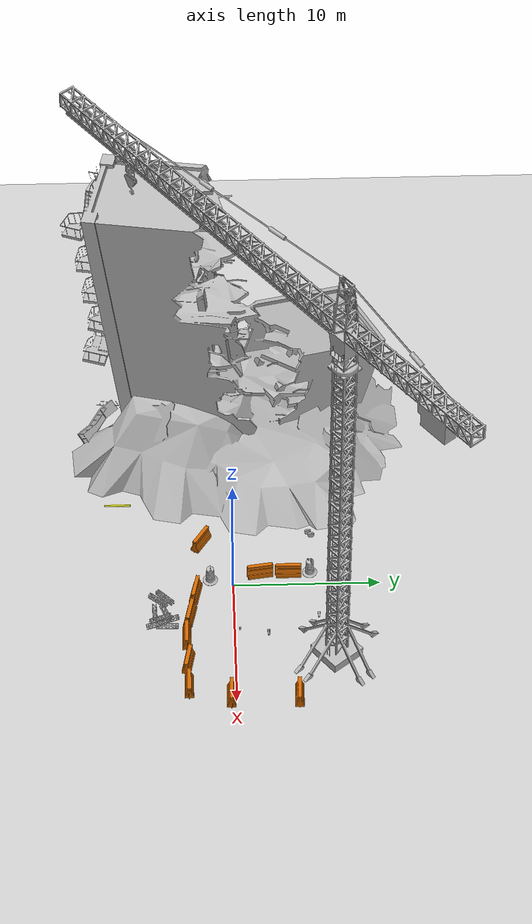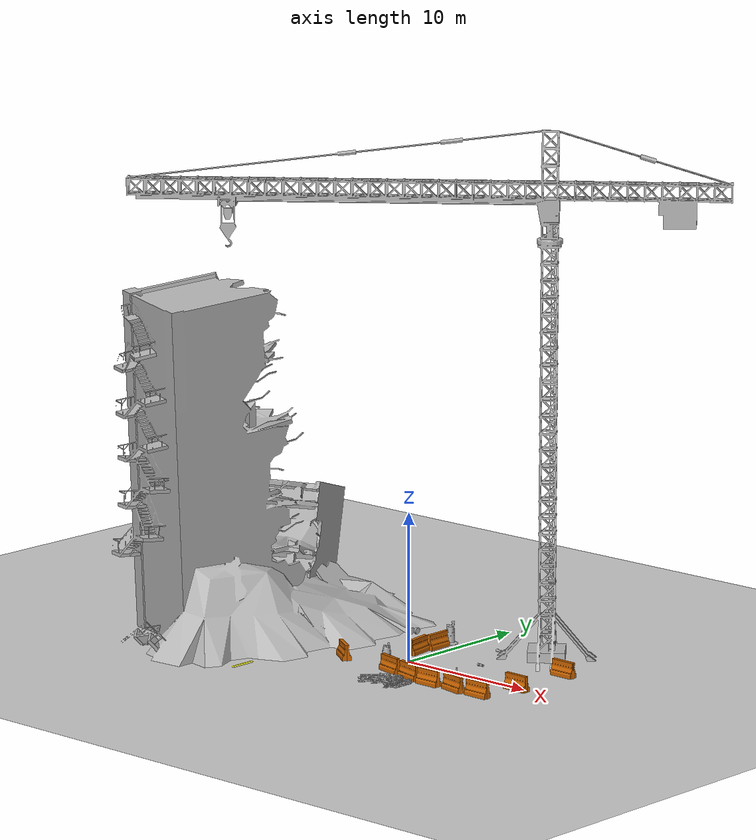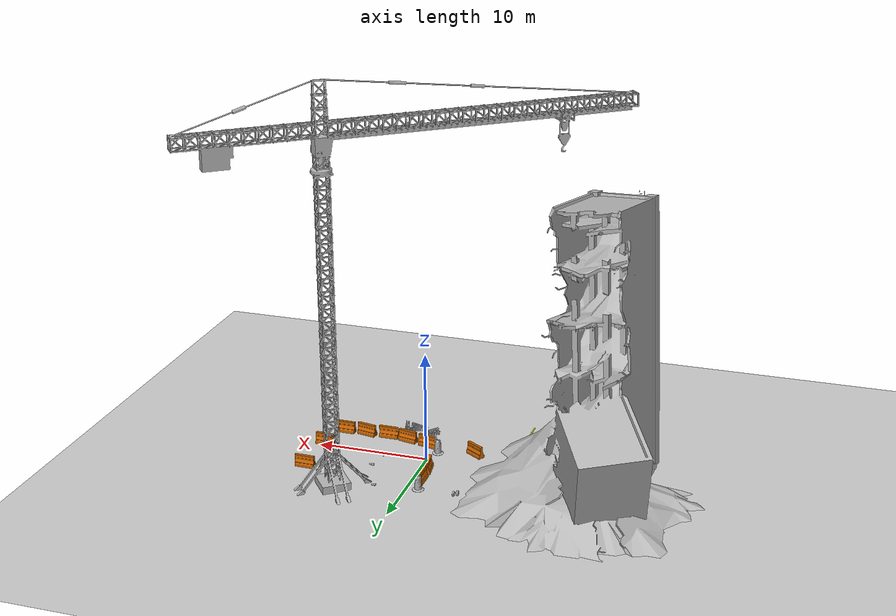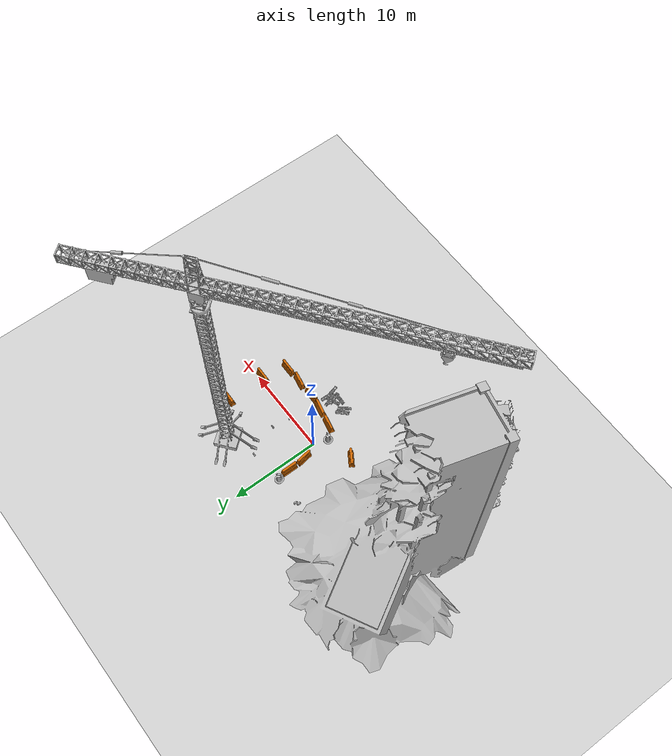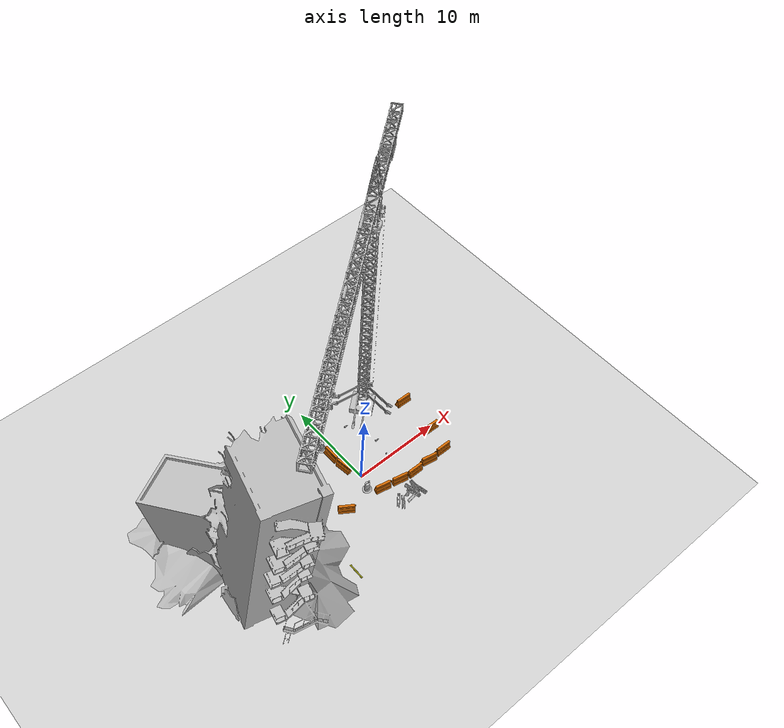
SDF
<sdf version="1.6">
 <world name="default">
  <light name="sun" type="directional">
   <pose>0 0 10 0 -0 0</pose>
   <diffuse>0.8 0.8 0.8 1</diffuse>
   <specular>0.1 0.1 0.1 1</specular>
   <attenuation>
    <range>1000</range>
    <constant>0.9</constant>
    <linear>0.01</linear>
    <quadratic>0.001</quadratic>
   </attenuation>
   <direction>-0.5 0.5 -1</direction>
  </light>
  <model name="ground_plane">
   <static>1</static>
   <link name="link">
    <collision name="collision">
     <geometry><plane><normal>0 0 1</normal><size>100 100</size></plane></geometry>
     <surface><friction><ode><mu>100</mu><mu2>50</mu2></ode></friction></surface>
    </collision>
    <visual name="visual">
     <cast_shadows>0</cast_shadows>
     <geometry><plane><normal>0 0 1</normal><size>100 100</size></plane></geometry>
     <material>
      <script><uri>file://media/materials/scripts/gazebo.material</uri><name>Gazebo/Grey</name></script>
     </material>
    </visual>
   </link>
  </model>
  <gravity>0 0 -9.8</gravity>
  <magnetic_field>6e-06 2.3e-05 -4.2e-05</magnetic_field>
  <atmosphere type="adiabatic"/>
  <physics name="default_physics" default="0" type="ode">
   <max_step_size>0.001</max_step_size>
   <real_time_factor>1</real_time_factor>
   <real_time_update_rate>1000</real_time_update_rate>
  </physics>
  <scene><ambient>0.4 0.4 0.4 1</ambient><background>0.7 0.7 0.7 1</background><shadows>1</shadows></scene>
  <spherical_coordinates>
   <surface_model>EARTH_WGS84</surface_model>
   <latitude_deg>0</latitude_deg>
   <longitude_deg>0</longitude_deg>
   <elevation>0</elevation>
   <heading_deg>0</heading_deg>
  </spherical_coordinates>
  <model name="collapsed_industrial">
   <static>1</static>
   <link name="link">
    <collision name="collision">
     <geometry><mesh><uri>model://collapsed_industrial/meshes/collapsed_industrial.dae</uri></mesh></geometry>
    </collision>
    <visual name="visual">
     <geometry><mesh><uri>model://collapsed_industrial/meshes/collapsed_industrial.dae</uri></mesh></geometry>
    </visual>
   </link>
   <pose>-14.0067 -0.103419 0 0 -0 1.33365</pose>
  </model>
  <model name="tower_crane">
   <static>1</static>
   <link name="link">
    <collision name="collision">
     <geometry><mesh><uri>model://tower_crane/meshes/tower_crane.dae</uri></mesh></geometry>
    </collision>
    <visual name="visual">
     <geometry><mesh><uri>model://tower_crane/meshes/tower_crane.dae</uri></mesh></geometry>
    </visual>
   </link>
   <pose>6.03726 6.79238 0 0 0 -0.898155</pose>
  </model>
  <model name="Construction Barrel">
   <link name="link">
    <inertial>
     <pose>0 0 0.4 0 -0 0</pose>
     <mass>500</mass>
     <inertia><ixx>51.2096</ixx><iyy>51.2096</iyy><izz>25</izz><ixy>0</ixy><ixz>0</ixz><iyz>0</iyz></inertia>
    </inertial>
    <collision name="collision">
     <geometry><mesh><uri>model://construction_barrel/meshes/construction_barrel.dae</uri></mesh></geometry>
    </collision>
    <visual name="visual">
     <geometry><mesh><uri>model://construction_barrel/meshes/construction_barrel.dae</uri></mesh></geometry>
    </visual>
   </link>
   <pose>-1.05597 5.25063 -2e-06 -8e-06 -0 0.858265</pose>
  </model>
  <model name="drc_practice_yellow_parking_block">
   <static>1</static>
   <link name="link">
    <visual name="visual">
     <geometry><mesh><uri>model://drc_practice_yellow_parking_block/meshes/block.dae</uri></mesh></geometry>
    </visual>
    <collision name="collision">
     <geometry><mesh><uri>model://drc_practice_yellow_parking_block/meshes/block.dae</uri></mesh></geometry>
    </collision>
   </link>
   <pose>-7.46948 -7.91567 0 0 -0 0</pose>
  </model>
  <model name="drc_practice_organge_jersey_barrier">
   <static>1</static>
   <link name="link">
    <visual name="visual">
     <geometry>
      <mesh><uri>model://drc_practice_orange_jersey_barrier/meshes/jersey_barrier.dae</uri></mesh>
     </geometry>
    </visual>
    <collision name="collision">
     <geometry>
      <mesh><uri>model://drc_practice_orange_jersey_barrier/meshes/jersey_barrier.dae</uri></mesh>
     </geometry>
    </collision>
   </link>
   <pose>-0.887228 3.80913 0 0 -0 0</pose>
  </model>
  <model name="drc_practice_organge_jersey_barrier_clone">
   <static>1</static>
   <link name="link">
    <visual name="visual">
     <geometry>
      <mesh><uri>model://drc_practice_orange_jersey_barrier/meshes/jersey_barrier.dae</uri></mesh>
     </geometry>
    </visual>
    <collision name="collision">
     <geometry>
      <mesh><uri>model://drc_practice_orange_jersey_barrier/meshes/jersey_barrier.dae</uri></mesh>
     </geometry>
    </collision>
   </link>
   <pose>-0.831854 1.85615 0.074298 0 -0 0.148039</pose>
  </model>
  <model name="Construction Barrel_0">
   <link name="link">
    <inertial>
     <pose>0 0 0.4 0 -0 0</pose>
     <mass>500</mass>
     <inertia><ixx>51.2096</ixx><iyy>51.2096</iyy><izz>25</izz><ixy>0</ixy><ixz>0</ixz><iyz>0</iyz></inertia>
    </inertial>
    <collision name="collision">
     <geometry><mesh><uri>model://construction_barrel/meshes/construction_barrel.dae</uri></mesh></geometry>
    </collision>
    <visual name="visual">
     <geometry><mesh><uri>model://construction_barrel/meshes/construction_barrel.dae</uri></mesh></geometry>
    </visual>
   </link>
   <pose>-0.544661 -1.56643 -2e-06 0 7e-06 0.000359</pose>
  </model>
  <model name="drc_practice_organge_jersey_barrier_clone_clone_clone">
   <static>1</static>
   <link name="link">
    <visual name="visual">
     <geometry>
      <mesh><uri>model://drc_practice_orange_jersey_barrier/meshes/jersey_barrier.dae</uri></mesh>
     </geometry>
    </visual>
    <collision name="collision">
     <geometry>
      <mesh><uri>model://drc_practice_orange_jersey_barrier/meshes/jersey_barrier.dae</uri></mesh>
     </geometry>
    </collision>
   </link>
   <pose>0.730668 -2.58497 0 0 -0 1.36537</pose>
  </model>
  <model name="drc_practice_organge_jersey_barrier_clone_clone_clone_clone">
   <static>1</static>
   <link name="link">
    <visual name="visual">
     <geometry>
      <mesh><uri>model://drc_practice_orange_jersey_barrier/meshes/jersey_barrier.dae</uri></mesh>
     </geometry>
    </visual>
    <collision name="collision">
     <geometry>
      <mesh><uri>model://drc_practice_orange_jersey_barrier/meshes/jersey_barrier.dae</uri></mesh>
     </geometry>
    </collision>
   </link>
   <pose>2.74419 -2.98704 0 0 -0 1.36537</pose>
  </model>
  <model name="drc_practice_organge_jersey_barrier_clone_clone_clone_clone_0">
   <static>1</static>
   <link name="link">
    <visual name="visual">
     <geometry>
      <mesh><uri>model://drc_practice_orange_jersey_barrier/meshes/jersey_barrier.dae</uri></mesh>
     </geometry>
    </visual>
    <collision name="collision">
     <geometry>
      <mesh><uri>model://drc_practice_orange_jersey_barrier/meshes/jersey_barrier.dae</uri></mesh>
     </geometry>
    </collision>
   </link>
   <pose>4.65125 -3.23691 0 0 -0 1.56758</pose>
  </model>
  <model name="drc_practice_organge_jersey_barrier_clone_clone_clone_clone_0_clone">
   <static>1</static>
   <link name="link">
    <visual name="visual">
     <geometry>
      <mesh><uri>model://drc_practice_orange_jersey_barrier/meshes/jersey_barrier.dae</uri></mesh>
     </geometry>
    </visual>
    <collision name="collision">
     <geometry>
      <mesh><uri>model://drc_practice_orange_jersey_barrier/meshes/jersey_barrier.dae</uri></mesh>
     </geometry>
    </collision>
   </link>
   <pose>6.73423 -3.15665 0 0 -0 1.3882</pose>
  </model>
  <model name="drc_practice_organge_jersey_barrier_clone_clone_clone_clone_0_clone_0">
   <static>1</static>
   <link name="link">
    <visual name="visual">
     <geometry>
      <mesh><uri>model://drc_practice_orange_jersey_barrier/meshes/jersey_barrier.dae</uri></mesh>
     </geometry>
    </visual>
    <collision name="collision">
     <geometry>
      <mesh><uri>model://drc_practice_orange_jersey_barrier/meshes/jersey_barrier.dae</uri></mesh>
     </geometry>
    </collision>
   </link>
   <pose>8.77452 -3.12573 0 0 -0 1.56758</pose>
  </model>
  <model name="jersey_barrier">
   <static>1</static>
   <link name="link">
    <visual name="visual">
     <geometry><mesh><uri>model://jersey_barrier/meshes/jersey_barrier.dae</uri></mesh></geometry>
    </visual>
    <collision name="upright">
     <pose>0 0 0.5715 0 -0 0</pose>
     <geometry><box><size>4.06542 0.3063 1.143</size></box></geometry>
    </collision>
    <collision name="base">
     <pose>0 0 0.032258 0 -0 0</pose>
     <geometry><box><size>4.06542 0.8107 0.064516</size></box></geometry>
    </collision>
    <collision name="base2">
     <pose>0 0 0.1 0 -0 0</pose>
     <geometry><box><size>4.06542 0.65 0.1</size></box></geometry>
    </collision>
    <collision name="base3">
     <pose>0 0 0.2 0 -0 0</pose>
     <geometry><box><size>4.06542 0.5 0.1</size></box></geometry>
    </collision>
    <collision name="left-angle">
     <pose>0 -0.224 0.2401 0.9 -0 0</pose>
     <geometry><box><size>4.06542 0.5 0.064516</size></box></geometry>
    </collision>
    <collision name="right-angle">
     <pose>0 0.224 0.2401 -0.9 0 0</pose>
     <geometry><box><size>4.06542 0.5 0.064516</size></box></geometry>
    </collision>
   </link>
   <pose>9.63167 -0.326579 0 0 -0 1.55298</pose>
  </model>
  <model name="jersey_barrier_clone">
   <static>1</static>
   <link name="link">
    <visual name="visual">
     <geometry><mesh><uri>model://jersey_barrier/meshes/jersey_barrier.dae</uri></mesh></geometry>
    </visual>
    <collision name="upright">
     <pose>0 0 0.5715 0 -0 0</pose>
     <geometry><box><size>4.06542 0.3063 1.143</size></box></geometry>
    </collision>
    <collision name="base">
     <pose>0 0 0.032258 0 -0 0</pose>
     <geometry><box><size>4.06542 0.8107 0.064516</size></box></geometry>
    </collision>
    <collision name="base2">
     <pose>0 0 0.1 0 -0 0</pose>
     <geometry><box><size>4.06542 0.65 0.1</size></box></geometry>
    </collision>
    <collision name="base3">
     <pose>0 0 0.2 0 -0 0</pose>
     <geometry><box><size>4.06542 0.5 0.1</size></box></geometry>
    </collision>
    <collision name="left-angle">
     <pose>0 -0.224 0.2401 0.9 -0 0</pose>
     <geometry><box><size>4.06542 0.5 0.064516</size></box></geometry>
    </collision>
    <collision name="right-angle">
     <pose>0 0.224 0.2401 -0.9 0 0</pose>
     <geometry><box><size>4.06542 0.5 0.064516</size></box></geometry>
    </collision>
   </link>
   <pose>9.70602 4.18121 0 0 -0 1.55298</pose>
  </model>
  <model name="beer">
   <link name="link">
    <pose>0 0 0.115 0 -0 0</pose>
    <inertial>
     <mass>0.39</mass>
     <inertia><ixx>0.00058</ixx><ixy>0</ixy><ixz>0</ixz><iyy>0.00058</iyy><iyz>0</iyz><izz>0.00019</izz></inertia>
    </inertial>
    <collision name="collision">
     <geometry><cylinder><radius>0.055</radius><length>0.23</length></cylinder></geometry>
    </collision>
    <visual name="visual">
     <geometry><cylinder><radius>0.055</radius><length>0.23</length></cylinder></geometry>
     <material>
      <script>
       <uri>model://beer/materials/scripts</uri>
       <uri>model://beer/materials/textures</uri>
       <name>Beer/Diffuse</name>
      </script>
     </material>
    </visual>
   </link>
   <pose>3.85469 0.373431 -8e-06 0 -0 0.000334</pose>
  </model>
  <model name="standpipe">
   <static>1</static>
   <link name="standpipe">
    <pose>0 0 0.1 0 1.57078 0</pose>
    <collision name="collision_stopper">
     <pose>0 0 0.22 0 -0 0</pose>
     <geometry><cylinder><radius>0.069</radius><length>0.1</length></cylinder></geometry>
     <surface><friction><ode><mu>0.5</mu><mu2>0.5</mu2></ode></friction></surface>
    </collision>
    <collision name="collision">
     <pose>0 0 0.15 0 -0 0</pose>
     <geometry><mesh><uri>model://standpipe/meshes/standpipe.dae</uri></mesh></geometry>
     <surface><friction><ode><mu>0.5</mu><mu2>0.5</mu2></ode></friction></surface>
    </collision>
    <visual name="visual">
     <pose>0 0 0.15 0 -0 0</pose>
     <geometry><mesh><uri>model://standpipe/meshes/standpipe.dae</uri></mesh></geometry>
    </visual>
   </link>
   <pose>3.91415 2.30422 0 0 -0 0</pose>
  </model>
  <model name="standpipe_clone">
   <static>1</static>
   <link name="standpipe">
    <pose>0 0 0.1 0 1.57078 0</pose>
    <collision name="collision_stopper">
     <pose>0 0 0.22 0 -0 0</pose>
     <geometry><cylinder><radius>0.069</radius><length>0.1</length></cylinder></geometry>
     <surface><friction><ode><mu>0.5</mu><mu2>0.5</mu2></ode></friction></surface>
    </collision>
    <collision name="collision">
     <pose>0 0 0.15 0 -0 0</pose>
     <geometry><mesh><uri>model://standpipe/meshes/standpipe.dae</uri></mesh></geometry>
     <surface><friction><ode><mu>0.5</mu><mu2>0.5</mu2></ode></friction></surface>
    </collision>
    <visual name="visual">
     <pose>0 0 0.15 0 -0 0</pose>
     <geometry><mesh><uri>model://standpipe/meshes/standpipe.dae</uri></mesh></geometry>
    </visual>
   </link>
   <pose>2.44659 5.74462 0 0 -0 0</pose>
  </model>
  <model name="jersey_barrier_0">
   <static>1</static>
   <link name="link">
    <visual name="visual">
     <geometry><mesh><uri>model://jersey_barrier/meshes/jersey_barrier.dae</uri></mesh></geometry>
    </visual>
    <collision name="upright">
     <pose>0 0 0.5715 0 -0 0</pose>
     <geometry><box><size>4.06542 0.3063 1.143</size></box></geometry>
    </collision>
    <collision name="base">
     <pose>0 0 0.032258 0 -0 0</pose>
     <geometry><box><size>4.06542 0.8107 0.064516</size></box></geometry>
    </collision>
    <collision name="base2">
     <pose>0 0 0.1 0 -0 0</pose>
     <geometry><box><size>4.06542 0.65 0.1</size></box></geometry>
    </collision>
    <collision name="base3">
     <pose>0 0 0.2 0 -0 0</pose>
     <geometry><box><size>4.06542 0.5 0.1</size></box></geometry>
    </collision>
    <collision name="left-angle">
     <pose>0 -0.224 0.2401 0.9 -0 0</pose>
     <geometry><box><size>4.06542 0.5 0.064516</size></box></geometry>
    </collision>
    <collision name="right-angle">
     <pose>0 0.224 0.2401 -0.9 0 0</pose>
     <geometry><box><size>4.06542 0.5 0.064516</size></box></geometry>
    </collision>
   </link>
   <pose>-3.83767 -2.1374 0 0 -0 1.00568</pose>
  </model>
  <model name="truss">
   <link name="link">
    <inertial>
     <mass>20.7307</mass>
     <inertia>
      <ixx>4.7978</ixx>
      <ixy>0</ixy>
      <ixz>0</ixz>
      <iyy>0.4699</iyy>
      <iyz>-0.002</iyz>
      <izz>4.7978</izz>
     </inertia>
    </inertial>
    <collision name="collision">
     <geometry><mesh><uri>model://drc_practice_truss/meshes/truss.dae</uri></mesh></geometry>
     <surface>
      <bounce><restitution_coefficient>0</restitution_coefficient><threshold>100000</threshold></bounce>
      <friction><ode><mu>10</mu><mu2>10</mu2></ode></friction>
     </surface>
    </collision>
    <visual name="visual">
     <geometry><mesh><uri>model://drc_practice_truss/meshes/truss.dae</uri></mesh></geometry>
    </visual>
   </link>
   <pose>3.55011 -4.5392 0.143278 3.8e-05 1.1e-05 -0.014973</pose>
  </model>
  <model name="truss_clone">
   <link name="link">
    <inertial>
     <mass>20.7307</mass>
     <inertia>
      <ixx>4.7978</ixx>
      <ixy>0</ixy>
      <ixz>0</ixz>
      <iyy>0.4699</iyy>
      <iyz>-0.002</iyz>
      <izz>4.7978</izz>
     </inertia>
    </inertial>
    <collision name="collision">
     <geometry><mesh><uri>model://drc_practice_truss/meshes/truss.dae</uri></mesh></geometry>
     <surface>
      <bounce><restitution_coefficient>0</restitution_coefficient><threshold>100000</threshold></bounce>
      <friction><ode><mu>10</mu><mu2>10</mu2></ode></friction>
     </surface>
    </collision>
    <visual name="visual">
     <geometry><mesh><uri>model://drc_practice_truss/meshes/truss.dae</uri></mesh></geometry>
    </visual>
   </link>
   <pose>3.02337 -4.47561 0.147697 -3.14097 -2.3e-05 -2.8191</pose>
  </model>
  <model name="truss_clone_0">
   <link name="link">
    <inertial>
     <mass>20.7307</mass>
     <inertia>
      <ixx>4.7978</ixx>
      <ixy>0</ixy>
      <ixz>0</ixz>
      <iyy>0.4699</iyy>
      <iyz>-0.002</iyz>
      <izz>4.7978</izz>
     </inertia>
    </inertial>
    <collision name="collision">
     <geometry><mesh><uri>model://drc_practice_truss/meshes/truss.dae</uri></mesh></geometry>
     <surface>
      <bounce><restitution_coefficient>0</restitution_coefficient><threshold>100000</threshold></bounce>
      <friction><ode><mu>10</mu><mu2>10</mu2></ode></friction>
     </surface>
    </collision>
    <visual name="visual">
     <geometry><mesh><uri>model://drc_practice_truss/meshes/truss.dae</uri></mesh></geometry>
    </visual>
   </link>
   <pose>3.58412 -5.20453 0.429022 -1.66684 1.48653 1.74295</pose>
  </model>
  <model name="truss_clone_1">
   <link name="link">
    <inertial>
     <mass>20.7307</mass>
     <inertia>
      <ixx>4.7978</ixx>
      <ixy>0</ixy>
      <ixz>0</ixz>
      <iyy>0.4699</iyy>
      <iyz>-0.002</iyz>
      <izz>4.7978</izz>
     </inertia>
    </inertial>
    <collision name="collision">
     <geometry><mesh><uri>model://drc_practice_truss/meshes/truss.dae</uri></mesh></geometry>
     <surface>
      <bounce><restitution_coefficient>0</restitution_coefficient><threshold>100000</threshold></bounce>
      <friction><ode><mu>10</mu><mu2>10</mu2></ode></friction>
     </surface>
    </collision>
    <visual name="visual">
     <geometry><mesh><uri>model://drc_practice_truss/meshes/truss.dae</uri></mesh></geometry>
    </visual>
   </link>
   <pose>2.87636 -4.98996 0.14796 -0.179645 1.57052 0.166097</pose>
  </model>
  <model name="truss_clone_2">
   <link name="link">
    <inertial>
     <mass>20.7307</mass>
     <inertia>
      <ixx>4.7978</ixx>
      <ixy>0</ixy>
      <ixz>0</ixz>
      <iyy>0.4699</iyy>
      <iyz>-0.002</iyz>
      <izz>4.7978</izz>
     </inertia>
    </inertial>
    <collision name="collision">
     <geometry><mesh><uri>model://drc_practice_truss/meshes/truss.dae</uri></mesh></geometry>
     <surface>
      <bounce><restitution_coefficient>0</restitution_coefficient><threshold>100000</threshold></bounce>
      <friction><ode><mu>10</mu><mu2>10</mu2></ode></friction>
     </surface>
    </collision>
    <visual name="visual">
     <geometry><mesh><uri>model://drc_practice_truss/meshes/truss.dae</uri></mesh></geometry>
    </visual>
   </link>
   <pose>2.61468 -4.64544 0.438459 -1.63642 1.56886 0.313332</pose>
  </model>
  <model name="truss_clone_2_clone">
   <link name="link">
    <inertial>
     <mass>20.7307</mass>
     <inertia>
      <ixx>4.7978</ixx>
      <ixy>0</ixy>
      <ixz>0</ixz>
      <iyy>0.4699</iyy>
      <iyz>-0.002</iyz>
      <izz>4.7978</izz>
     </inertia>
    </inertial>
    <collision name="collision">
     <geometry><mesh><uri>model://drc_practice_truss/meshes/truss.dae</uri></mesh></geometry>
     <surface>
      <bounce><restitution_coefficient>0</restitution_coefficient><threshold>100000</threshold></bounce>
      <friction><ode><mu>10</mu><mu2>10</mu2></ode></friction>
     </surface>
    </collision>
    <visual name="visual">
     <geometry><mesh><uri>model://drc_practice_truss/meshes/truss.dae</uri></mesh></geometry>
    </visual>
   </link>
   <pose>2.48285 -5.38263 0.337223 -0.250719 -0.078668 1.63245</pose>
  </model>
  <model name="truss_clone_2_clone_clone">
   <link name="link">
    <inertial>
     <mass>20.7307</mass>
     <inertia>
      <ixx>4.7978</ixx>
      <ixy>0</ixy>
      <ixz>0</ixz>
      <iyy>0.4699</iyy>
      <iyz>-0.002</iyz>
      <izz>4.7978</izz>
     </inertia>
    </inertial>
    <collision name="collision">
     <geometry><mesh><uri>model://drc_practice_truss/meshes/truss.dae</uri></mesh></geometry>
     <surface>
      <bounce><restitution_coefficient>0</restitution_coefficient><threshold>100000</threshold></bounce>
      <friction><ode><mu>10</mu><mu2>10</mu2></ode></friction>
     </surface>
    </collision>
    <visual name="visual">
     <geometry><mesh><uri>model://drc_practice_truss/meshes/truss.dae</uri></mesh></geometry>
    </visual>
   </link>
   <pose>1.04151 -4.681 0.143305 0 -0 2.3613</pose>
  </model>
  <model name="truss_clone_2_clone_clone_0">
   <link name="link">
    <inertial>
     <mass>20.7307</mass>
     <inertia>
      <ixx>4.7978</ixx>
      <ixy>0</ixy>
      <ixz>0</ixz>
      <iyy>0.4699</iyy>
      <iyz>-0.002</iyz>
      <izz>4.7978</izz>
     </inertia>
    </inertial>
    <collision name="collision">
     <geometry><mesh><uri>model://drc_practice_truss/meshes/truss.dae</uri></mesh></geometry>
     <surface>
      <bounce><restitution_coefficient>0</restitution_coefficient><threshold>100000</threshold></bounce>
      <friction><ode><mu>10</mu><mu2>10</mu2></ode></friction>
     </surface>
    </collision>
    <visual name="visual">
     <geometry><mesh><uri>model://drc_practice_truss/meshes/truss.dae</uri></mesh></geometry>
    </visual>
   </link>
   <pose>1.28632 -5.14792 0.147994 -7e-06 1.57079 2.46223</pose>
  </model>
  <model name="standpipe_clone_0">
   <static>1</static>
   <link name="standpipe">
    <pose>0 0 0.1 0 1.57078 0</pose>
    <collision name="collision_stopper">
     <pose>0 0 0.22 0 -0 0</pose>
     <geometry><cylinder><radius>0.069</radius><length>0.1</length></cylinder></geometry>
     <surface><friction><ode><mu>0.5</mu><mu2>0.5</mu2></ode></friction></surface>
    </collision>
    <collision name="collision">
     <pose>0 0 0.15 0 -0 0</pose>
     <geometry><mesh><uri>model://standpipe/meshes/standpipe.dae</uri></mesh></geometry>
     <surface><friction><ode><mu>0.5</mu><mu2>0.5</mu2></ode></friction></surface>
    </collision>
    <visual name="visual">
     <pose>0 0 0.15 0 -0 0</pose>
     <geometry><mesh><uri>model://standpipe/meshes/standpipe.dae</uri></mesh></geometry>
    </visual>
   </link>
   <pose>3.87778 2.30096 0 0 -0 0</pose>
  </model>
  <model name="car_wheel">
   <link name="link">
    <pose>0 0 0.21682 0 1.5707 0</pose>
    <inertial>
     <mass>12</mass>
     <inertia>
      <ixx>0.167005</ixx>
      <ixy>0</ixy>
      <ixz>0</ixz>
      <iyy>0.167005</iyy>
      <iyz>0</iyz>
      <izz>0.282065</izz>
     </inertia>
    </inertial>
    <collision name="collision">
     <geometry><cylinder><radius>0.21682</radius><length>0.16116</length></cylinder></geometry>
     <surface>
      <friction><ode><mu>1</mu><mu2>1</mu2><fdir1>0 0 1</fdir1><slip1>0</slip1><slip2>0</slip2></ode></friction>
      <contact><ode><min_depth>0.005</min_depth><kp>1e+08</kp></ode></contact>
     </surface>
    </collision>
    <visual name="visual">
     <pose>0 0 -0.08058 0 -0 0</pose>
     <geometry><mesh><uri>model://car_wheel/meshes/car_wheel.dae</uri></mesh></geometry>
    </visual>
   </link>
   <pose>-4.26261 5.4727 -0.001291 0 9.6e-05 0</pose>
  </model>
  <model name="car_wheel_clone">
   <link name="link">
    <pose>0 0 0.21682 0 1.5707 0</pose>
    <inertial>
     <mass>12</mass>
     <inertia>
      <ixx>0.167005</ixx>
      <ixy>0</ixy>
      <ixz>0</ixz>
      <iyy>0.167005</iyy>
      <iyz>0</iyz>
      <izz>0.282065</izz>
     </inertia>
    </inertial>
    <collision name="collision">
     <geometry><cylinder><radius>0.21682</radius><length>0.16116</length></cylinder></geometry>
     <surface>
      <friction><ode><mu>1</mu><mu2>1</mu2><fdir1>0 0 1</fdir1><slip1>0</slip1><slip2>0</slip2></ode></friction>
      <contact><ode><min_depth>0.005</min_depth><kp>1e+08</kp></ode></contact>
     </surface>
    </collision>
    <visual name="visual">
     <pose>0 0 -0.08058 0 -0 0</pose>
     <geometry><mesh><uri>model://car_wheel/meshes/car_wheel.dae</uri></mesh></geometry>
    </visual>
   </link>
   <pose>-4.54614 5.25045 -0.001291 0 9.6e-05 0</pose>
  </model>
 </world>
</sdf>
